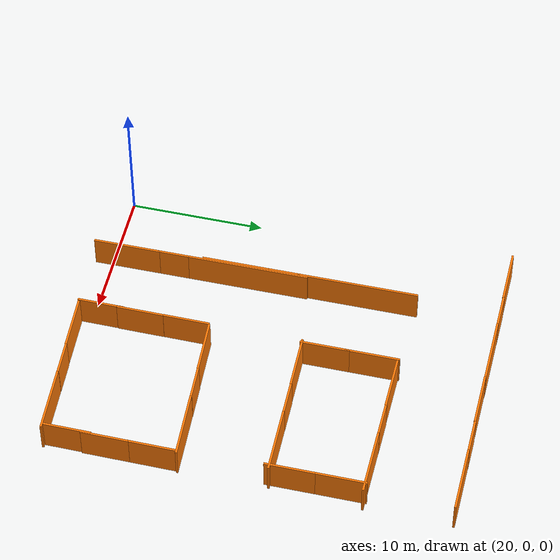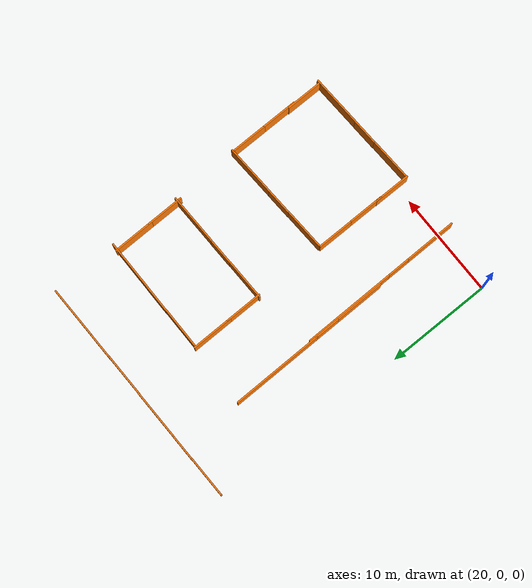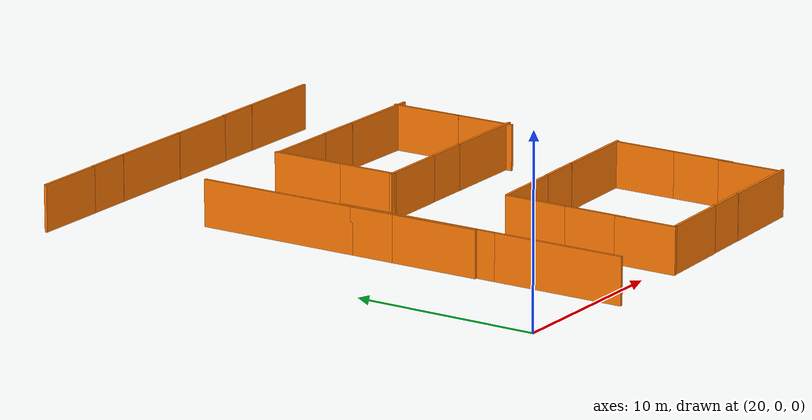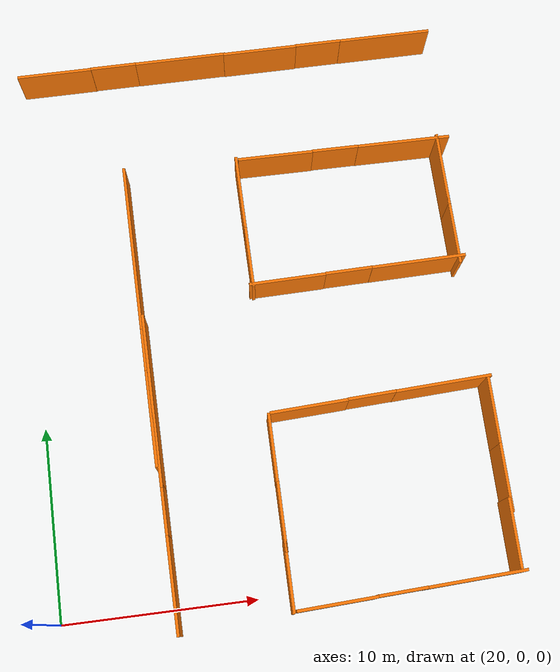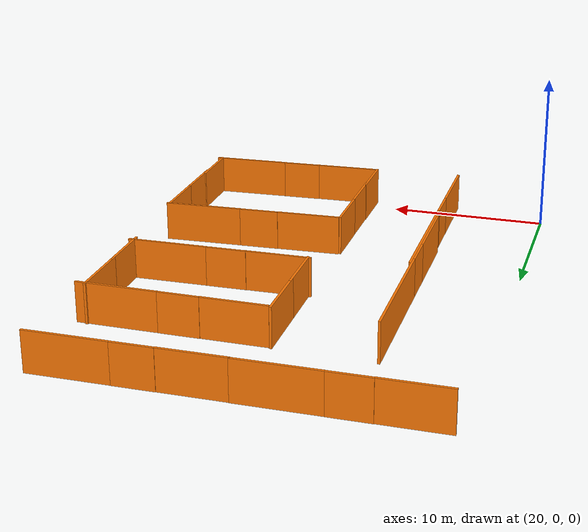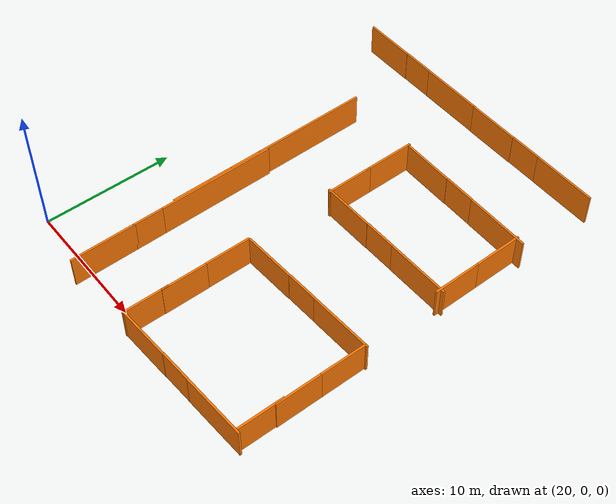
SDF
<sdf version="1.7">
 <world name="cimen_zemin_dunyasi">
  <model name="barier3_clone">
   <pose>28.1694 6.81332 0 0 0 -1.56341</pose>
   <link name="Wall_5">
    <collision name="Wall_5_Collision">
     <geometry><box><size>9 0.15 2.5</size></box></geometry>
     <pose>0 0 1.25 0 -0 0</pose>
    </collision>
    <visual name="Wall_5_Visual">
     <pose>0 0 1.25 0 -0 0</pose>
     <geometry><box><size>9 0.15 2.5</size></box></geometry>
     <material>
      <script><uri>file://media/materials/scripts/gazebo.material</uri><name>Gazebo/Grey</name></script>
      <ambient>0.996078 0.47451 0.0196078 1</ambient>
     </material>
     <meta><layer>0</layer></meta>
    </visual>
    <pose>-3.6 -2.29057 0 0 -0 0</pose>
   </link>
   <link name="Wall_7">
    <collision name="Wall_7_Collision">
     <geometry><box><size>2.5 0.15 2.5</size></box></geometry>
     <pose>0 0 1.25 0 -0 0</pose>
    </collision>
    <visual name="Wall_7_Visual">
     <pose>0 0 1.25 0 -0 0</pose>
     <geometry><box><size>2.5 0.15 2.5</size></box></geometry>
     <material>
      <script><uri>file://media/materials/scripts/gazebo.material</uri><name>Gazebo/Grey</name></script>
      <ambient>0.996078 0.47451 0.0196078 1</ambient>
     </material>
     <meta><layer>0</layer></meta>
    </visual>
    <pose>2 -2.29057 0 0 -0 0</pose>
   </link>
   <link name="Wall_9">
    <collision name="Wall_9_Collision">
     <geometry><box><size>5 0.15 2.5</size></box></geometry>
     <pose>0 0 1.25 0 -0 0</pose>
    </collision>
    <visual name="Wall_9_Visual">
     <pose>0 0 1.25 0 -0 0</pose>
     <geometry><box><size>5 0.15 2.5</size></box></geometry>
     <material>
      <script><uri>file://media/materials/scripts/gazebo.material</uri><name>Gazebo/Grey</name></script>
      <ambient>0.996078 0.47451 0.0196078 1</ambient>
     </material>
     <meta><layer>0</layer></meta>
    </visual>
    <pose>5.6 -2.29057 0 0 -0 0</pose>
   </link>
   <static>1</static>
  </model>
  <model name="barier3_clone_clone_0">
   <pose>27.9844 15.0485 0 0 0 -1.56341</pose>
   <link name="Wall_5">
    <collision name="Wall_5_Collision">
     <geometry><box><size>9 0.15 2.5</size></box></geometry>
     <pose>0 0 1.25 0 -0 0</pose>
    </collision>
    <visual name="Wall_5_Visual">
     <pose>0 0 1.25 0 -0 0</pose>
     <geometry><box><size>9 0.15 2.5</size></box></geometry>
     <material>
      <script><uri>file://media/materials/scripts/gazebo.material</uri><name>Gazebo/Grey</name></script>
      <ambient>0.996078 0.47451 0.0196078 1</ambient>
     </material>
     <meta><layer>0</layer></meta>
    </visual>
    <pose>-3.6 -2.29057 0 0 -0 0</pose>
   </link>
   <link name="Wall_7">
    <collision name="Wall_7_Collision">
     <geometry><box><size>2.5 0.15 2.5</size></box></geometry>
     <pose>0 0 1.25 0 -0 0</pose>
    </collision>
    <visual name="Wall_7_Visual">
     <pose>0 0 1.25 0 -0 0</pose>
     <geometry><box><size>2.5 0.15 2.5</size></box></geometry>
     <material>
      <script><uri>file://media/materials/scripts/gazebo.material</uri><name>Gazebo/Grey</name></script>
      <ambient>0.996078 0.47451 0.0196078 1</ambient>
     </material>
     <meta><layer>0</layer></meta>
    </visual>
    <pose>2 -2.29057 0 0 -0 0</pose>
   </link>
   <link name="Wall_9">
    <collision name="Wall_9_Collision">
     <geometry><box><size>5 0.15 2.5</size></box></geometry>
     <pose>0 0 1.25 0 -0 0</pose>
    </collision>
    <visual name="Wall_9_Visual">
     <pose>0 0 1.25 0 -0 0</pose>
     <geometry><box><size>5 0.15 2.5</size></box></geometry>
     <material>
      <script><uri>file://media/materials/scripts/gazebo.material</uri><name>Gazebo/Grey</name></script>
      <ambient>0.996078 0.47451 0.0196078 1</ambient>
     </material>
     <meta><layer>0</layer></meta>
    </visual>
    <pose>5.6 -2.29057 0 0 -0 0</pose>
   </link>
   <static>1</static>
  </model>
  <model name="barier3_clone_clone_clone_clone_0_clone_clone_clone_clone_1_clone">
   <link name="Wall_5">
    <pose>-1.25417 -2.31114 0 0 -0 0</pose>
    <inertial>
     <inertia><ixx>0</ixx><ixy>0</ixy><ixz>0</ixz><iyy>0</iyy><iyz>0</iyz><izz>0</izz></inertia>
     <mass>0</mass>
    </inertial>
    <visual name="Wall_5_Visual">
     <pose>0 0 1.25 0 -0 0</pose>
     <geometry><box><size>4.04839 0.15 2.5</size></box></geometry>
     <material>
      <script><uri>file://media/materials/scripts/gazebo.material</uri><name>Gazebo/Grey</name></script>
      <ambient>0.996078 0.47451 0.0196078 1</ambient>
      <shader type="pixel"/>
     </material>
     <meta><layer>0</layer></meta>
    </visual>
    <collision name="Wall_5_Collision">
     <pose>0 0 1.25 0 -0 0</pose>
     <geometry><box><size>4.04839 0.15 2.5</size></box></geometry>
     <surface>
      <friction>
       <ode><mu>1</mu><mu2>1</mu2><fdir1>0 0 0</fdir1><slip1>0</slip1><slip2>0</slip2></ode>
       <torsional>
        <coefficient>1</coefficient>
        <patch_radius>0</patch_radius>
        <surface_radius>0</surface_radius>
        <use_patch_radius>1</use_patch_radius>
        <ode><slip>0</slip></ode>
       </torsional>
      </friction>
      <bounce><restitution_coefficient>0</restitution_coefficient><threshold>1e+06</threshold></bounce>
      <contact>
       <collide_without_contact>0</collide_without_contact>
       <collide_without_contact_bitmask>1</collide_without_contact_bitmask>
       <collide_bitmask>1</collide_bitmask>
       <ode>
        <soft_cfm>0</soft_cfm>
        <soft_erp>0.2</soft_erp>
        <kp>1e+13</kp>
        <kd>1</kd>
        <max_vel>0.01</max_vel>
        <min_depth>0</min_depth>
       </ode>
       <bullet>
        <split_impulse>1</split_impulse>
        <split_impulse_penetration_threshold>-0.01</split_impulse_penetration_threshold>
        <soft_cfm>0</soft_cfm>
        <soft_erp>0.2</soft_erp>
        <kp>1e+13</kp>
        <kd>1</kd>
       </bullet>
      </contact>
     </surface>
    </collision>
   </link>
   <link name="Wall_7">
    <pose>2 -2.29057 0 0 -0 0</pose>
    <visual name="Wall_7_Visual">
     <pose>0 0 1.25 0 -0 0</pose>
     <geometry><box><size>2.5 0.15 2.5</size></box></geometry>
     <material>
      <script><uri>file://media/materials/scripts/gazebo.material</uri><name>Gazebo/Grey</name></script>
      <ambient>0.996078 0.47451 0.0196078 1</ambient>
      <shader type="pixel"/>
     </material>
     <meta><layer>0</layer></meta>
    </visual>
    <collision name="Wall_7_Collision">
     <pose>0 0 1.25 0 -0 0</pose>
     <geometry><box><size>2.5 0.15 2.5</size></box></geometry>
     <surface>
      <friction>
       <ode><mu>1</mu><mu2>1</mu2><fdir1>0 0 0</fdir1><slip1>0</slip1><slip2>0</slip2></ode>
       <torsional>
        <coefficient>1</coefficient>
        <patch_radius>0</patch_radius>
        <surface_radius>0</surface_radius>
        <use_patch_radius>1</use_patch_radius>
        <ode><slip>0</slip></ode>
       </torsional>
      </friction>
      <bounce><restitution_coefficient>0</restitution_coefficient><threshold>1e+06</threshold></bounce>
      <contact>
       <collide_without_contact>0</collide_without_contact>
       <collide_without_contact_bitmask>1</collide_without_contact_bitmask>
       <collide_bitmask>1</collide_bitmask>
       <ode>
        <soft_cfm>0</soft_cfm>
        <soft_erp>0.2</soft_erp>
        <kp>1e+13</kp>
        <kd>1</kd>
        <max_vel>0.01</max_vel>
        <min_depth>0</min_depth>
       </ode>
       <bullet>
        <split_impulse>1</split_impulse>
        <split_impulse_penetration_threshold>-0.01</split_impulse_penetration_threshold>
        <soft_cfm>0</soft_cfm>
        <soft_erp>0.2</soft_erp>
        <kp>1e+13</kp>
        <kd>1</kd>
       </bullet>
      </contact>
     </surface>
    </collision>
   </link>
   <link name="Wall_9">
    <pose>5.71906 -2.30051 0 0 -0 0</pose>
    <inertial>
     <inertia><ixx>0</ixx><ixy>0</ixy><ixz>0</ixz><iyy>0</iyy><iyz>0</iyz><izz>0</izz></inertia>
     <mass>0</mass>
    </inertial>
    <visual name="Wall_9_Visual">
     <pose>0 0 1.25 0 -0 0</pose>
     <geometry><box><size>4.97607 0.15 2.5</size></box></geometry>
     <material>
      <script><uri>file://media/materials/scripts/gazebo.material</uri><name>Gazebo/Grey</name></script>
      <ambient>0.996078 0.47451 0.0196078 1</ambient>
      <shader type="pixel"/>
     </material>
     <meta><layer>0</layer></meta>
    </visual>
    <collision name="Wall_9_Collision">
     <pose>0 0 1.25 0 -0 0</pose>
     <geometry><box><size>4.97607 0.15 2.5</size></box></geometry>
     <surface>
      <friction>
       <ode><mu>1</mu><mu2>1</mu2><fdir1>0 0 0</fdir1><slip1>0</slip1><slip2>0</slip2></ode>
       <torsional>
        <coefficient>1</coefficient>
        <patch_radius>0</patch_radius>
        <surface_radius>0</surface_radius>
        <use_patch_radius>1</use_patch_radius>
        <ode><slip>0</slip></ode>
       </torsional>
      </friction>
      <bounce><restitution_coefficient>0</restitution_coefficient><threshold>1e+06</threshold></bounce>
      <contact>
       <collide_without_contact>0</collide_without_contact>
       <collide_without_contact_bitmask>1</collide_without_contact_bitmask>
       <collide_bitmask>1</collide_bitmask>
       <ode>
        <soft_cfm>0</soft_cfm>
        <soft_erp>0.2</soft_erp>
        <kp>1e+13</kp>
        <kd>1</kd>
        <max_vel>0.01</max_vel>
        <min_depth>0</min_depth>
       </ode>
       <bullet>
        <split_impulse>1</split_impulse>
        <split_impulse_penetration_threshold>-0.01</split_impulse_penetration_threshold>
        <soft_cfm>0</soft_cfm>
        <soft_erp>0.2</soft_erp>
        <kp>1e+13</kp>
        <kd>1</kd>
       </bullet>
      </contact>
     </surface>
    </collision>
   </link>
   <static>1</static>
   <pose>34.9079 1.61904 0 0 -0 0.044817</pose>
  </model>
  <model name="barier3_clone_clone_clone_clone_0_clone_clone_clone_clone_1_clone_clone">
   <link name="Wall_5">
    <pose>-1.25417 -2.31114 0 0 -0 0</pose>
    <inertial>
     <inertia><ixx>0</ixx><ixy>0</ixy><ixz>0</ixz><iyy>0</iyy><iyz>0</iyz><izz>0</izz></inertia>
     <mass>0</mass>
    </inertial>
    <visual name="Wall_5_Visual">
     <pose>0 0 1.25 0 -0 0</pose>
     <geometry><box><size>4.04839 0.15 2.5</size></box></geometry>
     <material>
      <script><uri>file://media/materials/scripts/gazebo.material</uri><name>Gazebo/Grey</name></script>
      <ambient>0.996078 0.47451 0.0196078 1</ambient>
      <shader type="pixel"/>
     </material>
     <meta><layer>0</layer></meta>
    </visual>
    <collision name="Wall_5_Collision">
     <pose>0 0 1.25 0 -0 0</pose>
     <geometry><box><size>4.04839 0.15 2.5</size></box></geometry>
     <surface>
      <friction>
       <ode><mu>1</mu><mu2>1</mu2><fdir1>0 0 0</fdir1><slip1>0</slip1><slip2>0</slip2></ode>
       <torsional>
        <coefficient>1</coefficient>
        <patch_radius>0</patch_radius>
        <surface_radius>0</surface_radius>
        <use_patch_radius>1</use_patch_radius>
        <ode><slip>0</slip></ode>
       </torsional>
      </friction>
      <bounce><restitution_coefficient>0</restitution_coefficient><threshold>1e+06</threshold></bounce>
      <contact>
       <collide_without_contact>0</collide_without_contact>
       <collide_without_contact_bitmask>1</collide_without_contact_bitmask>
       <collide_bitmask>1</collide_bitmask>
       <ode>
        <soft_cfm>0</soft_cfm>
        <soft_erp>0.2</soft_erp>
        <kp>1e+13</kp>
        <kd>1</kd>
        <max_vel>0.01</max_vel>
        <min_depth>0</min_depth>
       </ode>
       <bullet>
        <split_impulse>1</split_impulse>
        <split_impulse_penetration_threshold>-0.01</split_impulse_penetration_threshold>
        <soft_cfm>0</soft_cfm>
        <soft_erp>0.2</soft_erp>
        <kp>1e+13</kp>
        <kd>1</kd>
       </bullet>
      </contact>
     </surface>
    </collision>
   </link>
   <link name="Wall_7">
    <pose>2 -2.29057 0 0 -0 0</pose>
    <visual name="Wall_7_Visual">
     <pose>0 0 1.25 0 -0 0</pose>
     <geometry><box><size>2.5 0.15 2.5</size></box></geometry>
     <material>
      <script><uri>file://media/materials/scripts/gazebo.material</uri><name>Gazebo/Grey</name></script>
      <ambient>0.996078 0.47451 0.0196078 1</ambient>
      <shader type="pixel"/>
     </material>
     <meta><layer>0</layer></meta>
    </visual>
    <collision name="Wall_7_Collision">
     <pose>0 0 1.25 0 -0 0</pose>
     <geometry><box><size>2.5 0.15 2.5</size></box></geometry>
     <surface>
      <friction>
       <ode><mu>1</mu><mu2>1</mu2><fdir1>0 0 0</fdir1><slip1>0</slip1><slip2>0</slip2></ode>
       <torsional>
        <coefficient>1</coefficient>
        <patch_radius>0</patch_radius>
        <surface_radius>0</surface_radius>
        <use_patch_radius>1</use_patch_radius>
        <ode><slip>0</slip></ode>
       </torsional>
      </friction>
      <bounce><restitution_coefficient>0</restitution_coefficient><threshold>1e+06</threshold></bounce>
      <contact>
       <collide_without_contact>0</collide_without_contact>
       <collide_without_contact_bitmask>1</collide_without_contact_bitmask>
       <collide_bitmask>1</collide_bitmask>
       <ode>
        <soft_cfm>0</soft_cfm>
        <soft_erp>0.2</soft_erp>
        <kp>1e+13</kp>
        <kd>1</kd>
        <max_vel>0.01</max_vel>
        <min_depth>0</min_depth>
       </ode>
       <bullet>
        <split_impulse>1</split_impulse>
        <split_impulse_penetration_threshold>-0.01</split_impulse_penetration_threshold>
        <soft_cfm>0</soft_cfm>
        <soft_erp>0.2</soft_erp>
        <kp>1e+13</kp>
        <kd>1</kd>
       </bullet>
      </contact>
     </surface>
    </collision>
   </link>
   <link name="Wall_9">
    <pose>5.71906 -2.30051 0 0 -0 0</pose>
    <inertial>
     <inertia><ixx>0</ixx><ixy>0</ixy><ixz>0</ixz><iyy>0</iyy><iyz>0</iyz><izz>0</izz></inertia>
     <mass>0</mass>
    </inertial>
    <visual name="Wall_9_Visual">
     <pose>0 0 1.25 0 -0 0</pose>
     <geometry><box><size>4.97607 0.15 2.5</size></box></geometry>
     <material>
      <script><uri>file://media/materials/scripts/gazebo.material</uri><name>Gazebo/Grey</name></script>
      <ambient>0.996078 0.47451 0.0196078 1</ambient>
      <shader type="pixel"/>
     </material>
     <meta><layer>0</layer></meta>
    </visual>
    <collision name="Wall_9_Collision">
     <pose>0 0 1.25 0 -0 0</pose>
     <geometry><box><size>4.97607 0.15 2.5</size></box></geometry>
     <surface>
      <friction>
       <ode><mu>1</mu><mu2>1</mu2><fdir1>0 0 0</fdir1><slip1>0</slip1><slip2>0</slip2></ode>
       <torsional>
        <coefficient>1</coefficient>
        <patch_radius>0</patch_radius>
        <surface_radius>0</surface_radius>
        <use_patch_radius>1</use_patch_radius>
        <ode><slip>0</slip></ode>
       </torsional>
      </friction>
      <bounce><restitution_coefficient>0</restitution_coefficient><threshold>1e+06</threshold></bounce>
      <contact>
       <collide_without_contact>0</collide_without_contact>
       <collide_without_contact_bitmask>1</collide_without_contact_bitmask>
       <collide_bitmask>1</collide_bitmask>
       <ode>
        <soft_cfm>0</soft_cfm>
        <soft_erp>0.2</soft_erp>
        <kp>1e+13</kp>
        <kd>1</kd>
        <max_vel>0.01</max_vel>
        <min_depth>0</min_depth>
       </ode>
       <bullet>
        <split_impulse>1</split_impulse>
        <split_impulse_penetration_threshold>-0.01</split_impulse_penetration_threshold>
        <soft_cfm>0</soft_cfm>
        <soft_erp>0.2</soft_erp>
        <kp>1e+13</kp>
        <kd>1</kd>
       </bullet>
      </contact>
     </surface>
    </collision>
   </link>
   <static>1</static>
   <pose>34.8709 11.3998 0 0 -0 0.044817</pose>
  </model>
  <model name="barrier2_0_clone_clone_0_clone_clone_clone_clone_clone_0">
   <pose>30.9165 8.75458 0 0 -0 1.56919</pose>
   <link name="Wall_3">
    <collision name="Wall_3_Collision">
     <geometry><box><size>3.5 0.15 2.5</size></box></geometry>
     <pose>0 0 1.25 0 -0 0</pose>
    </collision>
    <visual name="Wall_3_Visual">
     <pose>0 0 1.25 0 -0 0</pose>
     <geometry><box><size>3.5 0.15 2.5</size></box></geometry>
     <material>
      <script><uri>file://media/materials/scripts/gazebo.material</uri><name>Gazebo/Grey</name></script>
      <ambient>0.996078 0.47451 0.0196078 1</ambient>
     </material>
     <meta><layer>0</layer></meta>
    </visual>
    <pose>-1.55327 -0.720218 0 0 -0 0</pose>
   </link>
   <static>1</static>
  </model>
  <model name="barrier2_0_clone_clone_0_clone_clone_clone_clone_clone_0_clone">
   <pose>30.9213 5.28965 0 0 -0 1.56919</pose>
   <link name="Wall_3">
    <collision name="Wall_3_Collision">
     <geometry><box><size>3.5 0.15 2.5</size></box></geometry>
     <pose>0 0 1.25 0 -0 0</pose>
    </collision>
    <visual name="Wall_3_Visual">
     <pose>0 0 1.25 0 -0 0</pose>
     <geometry><box><size>3.5 0.15 2.5</size></box></geometry>
     <material>
      <script><uri>file://media/materials/scripts/gazebo.material</uri><name>Gazebo/Grey</name></script>
      <ambient>0.996078 0.47451 0.0196078 1</ambient>
     </material>
     <meta><layer>0</layer></meta>
    </visual>
    <pose>-1.55327 -0.720218 0 0 -0 0</pose>
   </link>
   <static>1</static>
  </model>
  <model name="barrier2_0_clone_clone_0_clone_clone_clone_clone_clone_0_clone_clone">
   <pose>30.8904 2.35625 0 0 -0 1.56919</pose>
   <link name="Wall_3">
    <collision name="Wall_3_Collision">
     <geometry><box><size>3.5 0.15 2.5</size></box></geometry>
     <pose>0 0 1.25 0 -0 0</pose>
    </collision>
    <visual name="Wall_3_Visual">
     <pose>0 0 1.25 0 -0 0</pose>
     <geometry><box><size>3.5 0.15 2.5</size></box></geometry>
     <material>
      <script><uri>file://media/materials/scripts/gazebo.material</uri><name>Gazebo/Grey</name></script>
      <ambient>0.996078 0.47451 0.0196078 1</ambient>
     </material>
     <meta><layer>0</layer></meta>
    </visual>
    <pose>-1.55327 -0.720218 0 0 -0 0</pose>
   </link>
   <static>1</static>
  </model>
  <model name="barrier2_0_clone_clone_0_clone_clone_clone_clone_clone_0_clone_0">
   <pose>42.2613 9.24396 0 0 -0 1.56919</pose>
   <link name="Wall_3">
    <collision name="Wall_3_Collision">
     <geometry><box><size>3.5 0.15 2.5</size></box></geometry>
     <pose>0 0 1.25 0 -0 0</pose>
    </collision>
    <visual name="Wall_3_Visual">
     <pose>0 0 1.25 0 -0 0</pose>
     <geometry><box><size>3.5 0.15 2.5</size></box></geometry>
     <material>
      <script><uri>file://media/materials/scripts/gazebo.material</uri><name>Gazebo/Grey</name></script>
      <ambient>0.996078 0.47451 0.0196078 1</ambient>
     </material>
     <meta><layer>0</layer></meta>
    </visual>
    <pose>-1.55327 -0.720218 0 0 -0 0</pose>
   </link>
   <static>1</static>
  </model>
  <model name="barrier2_0_clone_clone_0_clone_clone_clone_clone_clone_0_clone_0_clone">
   <pose>42.256 5.80018 0 0 -0 1.56919</pose>
   <link name="Wall_3">
    <collision name="Wall_3_Collision">
     <geometry><box><size>3.5 0.15 2.5</size></box></geometry>
     <pose>0 0 1.25 0 -0 0</pose>
    </collision>
    <visual name="Wall_3_Visual">
     <pose>0 0 1.25 0 -0 0</pose>
     <geometry><box><size>3.5 0.15 2.5</size></box></geometry>
     <material>
      <script><uri>file://media/materials/scripts/gazebo.material</uri><name>Gazebo/Grey</name></script>
      <ambient>0.996078 0.47451 0.0196078 1</ambient>
     </material>
     <meta><layer>0</layer></meta>
    </visual>
    <pose>-1.55327 -0.720218 0 0 -0 0</pose>
   </link>
   <static>1</static>
  </model>
  <model name="barrier2_0_clone_clone_0_clone_clone_clone_clone_clone_0_clone_0_clone_clone">
   <pose>42.1832 3.05875 0 0 -0 1.56919</pose>
   <link name="Wall_3">
    <collision name="Wall_3_Collision">
     <geometry><box><size>3.5 0.15 2.5</size></box></geometry>
     <pose>0 0 1.25 0 -0 0</pose>
    </collision>
    <visual name="Wall_3_Visual">
     <pose>0 0 1.25 0 -0 0</pose>
     <geometry><box><size>3.5 0.15 2.5</size></box></geometry>
     <material>
      <script><uri>file://media/materials/scripts/gazebo.material</uri><name>Gazebo/Grey</name></script>
      <ambient>0.996078 0.47451 0.0196078 1</ambient>
     </material>
     <meta><layer>0</layer></meta>
    </visual>
    <pose>-1.55327 -0.720218 0 0 -0 0</pose>
   </link>
   <static>1</static>
  </model>
  <model name="barier3_clone_clone_clone_clone_0_clone_clone_clone_clone_1_clone_clone_clone">
   <link name="Wall_5">
    <pose>-1.25417 -2.31114 0 0 -0 0</pose>
    <inertial>
     <inertia><ixx>0</ixx><ixy>0</ixy><ixz>0</ixz><iyy>0</iyy><iyz>0</iyz><izz>0</izz></inertia>
     <mass>0</mass>
    </inertial>
    <visual name="Wall_5_Visual">
     <pose>0 0 1.25 0 -0 0</pose>
     <geometry><box><size>4.04839 0.15 2.5</size></box></geometry>
     <material>
      <script><uri>file://media/materials/scripts/gazebo.material</uri><name>Gazebo/Grey</name></script>
      <ambient>0.996078 0.47451 0.0196078 1</ambient>
      <shader type="pixel"/>
     </material>
     <meta><layer>0</layer></meta>
    </visual>
    <collision name="Wall_5_Collision">
     <pose>0 0 1.25 0 -0 0</pose>
     <geometry><box><size>4.04839 0.15 2.5</size></box></geometry>
     <surface>
      <friction>
       <ode><mu>1</mu><mu2>1</mu2><fdir1>0 0 0</fdir1><slip1>0</slip1><slip2>0</slip2></ode>
       <torsional>
        <coefficient>1</coefficient>
        <patch_radius>0</patch_radius>
        <surface_radius>0</surface_radius>
        <use_patch_radius>1</use_patch_radius>
        <ode><slip>0</slip></ode>
       </torsional>
      </friction>
      <bounce><restitution_coefficient>0</restitution_coefficient><threshold>1e+06</threshold></bounce>
      <contact>
       <collide_without_contact>0</collide_without_contact>
       <collide_without_contact_bitmask>1</collide_without_contact_bitmask>
       <collide_bitmask>1</collide_bitmask>
       <ode>
        <soft_cfm>0</soft_cfm>
        <soft_erp>0.2</soft_erp>
        <kp>1e+13</kp>
        <kd>1</kd>
        <max_vel>0.01</max_vel>
        <min_depth>0</min_depth>
       </ode>
       <bullet>
        <split_impulse>1</split_impulse>
        <split_impulse_penetration_threshold>-0.01</split_impulse_penetration_threshold>
        <soft_cfm>0</soft_cfm>
        <soft_erp>0.2</soft_erp>
        <kp>1e+13</kp>
        <kd>1</kd>
       </bullet>
      </contact>
     </surface>
    </collision>
   </link>
   <link name="Wall_7">
    <pose>2 -2.29057 0 0 -0 0</pose>
    <visual name="Wall_7_Visual">
     <pose>0 0 1.25 0 -0 0</pose>
     <geometry><box><size>2.5 0.15 2.5</size></box></geometry>
     <material>
      <script><uri>file://media/materials/scripts/gazebo.material</uri><name>Gazebo/Grey</name></script>
      <ambient>0.996078 0.47451 0.0196078 1</ambient>
      <shader type="pixel"/>
     </material>
     <meta><layer>0</layer></meta>
    </visual>
    <collision name="Wall_7_Collision">
     <pose>0 0 1.25 0 -0 0</pose>
     <geometry><box><size>2.5 0.15 2.5</size></box></geometry>
     <surface>
      <friction>
       <ode><mu>1</mu><mu2>1</mu2><fdir1>0 0 0</fdir1><slip1>0</slip1><slip2>0</slip2></ode>
       <torsional>
        <coefficient>1</coefficient>
        <patch_radius>0</patch_radius>
        <surface_radius>0</surface_radius>
        <use_patch_radius>1</use_patch_radius>
        <ode><slip>0</slip></ode>
       </torsional>
      </friction>
      <bounce><restitution_coefficient>0</restitution_coefficient><threshold>1e+06</threshold></bounce>
      <contact>
       <collide_without_contact>0</collide_without_contact>
       <collide_without_contact_bitmask>1</collide_without_contact_bitmask>
       <collide_bitmask>1</collide_bitmask>
       <ode>
        <soft_cfm>0</soft_cfm>
        <soft_erp>0.2</soft_erp>
        <kp>1e+13</kp>
        <kd>1</kd>
        <max_vel>0.01</max_vel>
        <min_depth>0</min_depth>
       </ode>
       <bullet>
        <split_impulse>1</split_impulse>
        <split_impulse_penetration_threshold>-0.01</split_impulse_penetration_threshold>
        <soft_cfm>0</soft_cfm>
        <soft_erp>0.2</soft_erp>
        <kp>1e+13</kp>
        <kd>1</kd>
       </bullet>
      </contact>
     </surface>
    </collision>
   </link>
   <link name="Wall_9">
    <pose>5.71906 -2.30051 0 0 -0 0</pose>
    <inertial>
     <inertia><ixx>0</ixx><ixy>0</ixy><ixz>0</ixz><iyy>0</iyy><iyz>0</iyz><izz>0</izz></inertia>
     <mass>0</mass>
    </inertial>
    <visual name="Wall_9_Visual">
     <pose>0 0 1.25 0 -0 0</pose>
     <geometry><box><size>4.97607 0.15 2.5</size></box></geometry>
     <material>
      <script><uri>file://media/materials/scripts/gazebo.material</uri><name>Gazebo/Grey</name></script>
      <ambient>0.996078 0.47451 0.0196078 1</ambient>
      <shader type="pixel"/>
     </material>
     <meta><layer>0</layer></meta>
    </visual>
    <collision name="Wall_9_Collision">
     <pose>0 0 1.25 0 -0 0</pose>
     <geometry><box><size>4.97607 0.15 2.5</size></box></geometry>
     <surface>
      <friction>
       <ode><mu>1</mu><mu2>1</mu2><fdir1>0 0 0</fdir1><slip1>0</slip1><slip2>0</slip2></ode>
       <torsional>
        <coefficient>1</coefficient>
        <patch_radius>0</patch_radius>
        <surface_radius>0</surface_radius>
        <use_patch_radius>1</use_patch_radius>
        <ode><slip>0</slip></ode>
       </torsional>
      </friction>
      <bounce><restitution_coefficient>0</restitution_coefficient><threshold>1e+06</threshold></bounce>
      <contact>
       <collide_without_contact>0</collide_without_contact>
       <collide_without_contact_bitmask>1</collide_without_contact_bitmask>
       <collide_bitmask>1</collide_bitmask>
       <ode>
        <soft_cfm>0</soft_cfm>
        <soft_erp>0.2</soft_erp>
        <kp>1e+13</kp>
        <kd>1</kd>
        <max_vel>0.01</max_vel>
        <min_depth>0</min_depth>
       </ode>
       <bullet>
        <split_impulse>1</split_impulse>
        <split_impulse_penetration_threshold>-0.01</split_impulse_penetration_threshold>
        <soft_cfm>0</soft_cfm>
        <soft_erp>0.2</soft_erp>
        <kp>1e+13</kp>
        <kd>1</kd>
       </bullet>
      </contact>
     </surface>
    </collision>
   </link>
   <static>1</static>
   <pose>35.0921 25.1428 0 0 0 -0.007995</pose>
  </model>
  <model name="barier3_clone_clone_clone_clone_0_clone_clone_clone_clone_1_clone_clone_clone_clone">
   <link name="Wall_5">
    <pose>-1.25417 -2.31114 0 0 -0 0</pose>
    <inertial>
     <inertia><ixx>0</ixx><ixy>0</ixy><ixz>0</ixz><iyy>0</iyy><iyz>0</iyz><izz>0</izz></inertia>
     <mass>0</mass>
    </inertial>
    <visual name="Wall_5_Visual">
     <pose>0 0 1.25 0 -0 0</pose>
     <geometry><box><size>4.04839 0.15 2.5</size></box></geometry>
     <material>
      <script><uri>file://media/materials/scripts/gazebo.material</uri><name>Gazebo/Grey</name></script>
      <ambient>0.996078 0.47451 0.0196078 1</ambient>
      <shader type="pixel"/>
     </material>
     <meta><layer>0</layer></meta>
    </visual>
    <collision name="Wall_5_Collision">
     <pose>0 0 1.25 0 -0 0</pose>
     <geometry><box><size>4.04839 0.15 2.5</size></box></geometry>
     <surface>
      <friction>
       <ode><mu>1</mu><mu2>1</mu2><fdir1>0 0 0</fdir1><slip1>0</slip1><slip2>0</slip2></ode>
       <torsional>
        <coefficient>1</coefficient>
        <patch_radius>0</patch_radius>
        <surface_radius>0</surface_radius>
        <use_patch_radius>1</use_patch_radius>
        <ode><slip>0</slip></ode>
       </torsional>
      </friction>
      <bounce><restitution_coefficient>0</restitution_coefficient><threshold>1e+06</threshold></bounce>
      <contact>
       <collide_without_contact>0</collide_without_contact>
       <collide_without_contact_bitmask>1</collide_without_contact_bitmask>
       <collide_bitmask>1</collide_bitmask>
       <ode>
        <soft_cfm>0</soft_cfm>
        <soft_erp>0.2</soft_erp>
        <kp>1e+13</kp>
        <kd>1</kd>
        <max_vel>0.01</max_vel>
        <min_depth>0</min_depth>
       </ode>
       <bullet>
        <split_impulse>1</split_impulse>
        <split_impulse_penetration_threshold>-0.01</split_impulse_penetration_threshold>
        <soft_cfm>0</soft_cfm>
        <soft_erp>0.2</soft_erp>
        <kp>1e+13</kp>
        <kd>1</kd>
       </bullet>
      </contact>
     </surface>
    </collision>
   </link>
   <link name="Wall_7">
    <pose>2 -2.29057 0 0 -0 0</pose>
    <visual name="Wall_7_Visual">
     <pose>0 0 1.25 0 -0 0</pose>
     <geometry><box><size>2.5 0.15 2.5</size></box></geometry>
     <material>
      <script><uri>file://media/materials/scripts/gazebo.material</uri><name>Gazebo/Grey</name></script>
      <ambient>0.996078 0.47451 0.0196078 1</ambient>
      <shader type="pixel"/>
     </material>
     <meta><layer>0</layer></meta>
    </visual>
    <collision name="Wall_7_Collision">
     <pose>0 0 1.25 0 -0 0</pose>
     <geometry><box><size>2.5 0.15 2.5</size></box></geometry>
     <surface>
      <friction>
       <ode><mu>1</mu><mu2>1</mu2><fdir1>0 0 0</fdir1><slip1>0</slip1><slip2>0</slip2></ode>
       <torsional>
        <coefficient>1</coefficient>
        <patch_radius>0</patch_radius>
        <surface_radius>0</surface_radius>
        <use_patch_radius>1</use_patch_radius>
        <ode><slip>0</slip></ode>
       </torsional>
      </friction>
      <bounce><restitution_coefficient>0</restitution_coefficient><threshold>1e+06</threshold></bounce>
      <contact>
       <collide_without_contact>0</collide_without_contact>
       <collide_without_contact_bitmask>1</collide_without_contact_bitmask>
       <collide_bitmask>1</collide_bitmask>
       <ode>
        <soft_cfm>0</soft_cfm>
        <soft_erp>0.2</soft_erp>
        <kp>1e+13</kp>
        <kd>1</kd>
        <max_vel>0.01</max_vel>
        <min_depth>0</min_depth>
       </ode>
       <bullet>
        <split_impulse>1</split_impulse>
        <split_impulse_penetration_threshold>-0.01</split_impulse_penetration_threshold>
        <soft_cfm>0</soft_cfm>
        <soft_erp>0.2</soft_erp>
        <kp>1e+13</kp>
        <kd>1</kd>
       </bullet>
      </contact>
     </surface>
    </collision>
   </link>
   <link name="Wall_9">
    <pose>5.71906 -2.30051 0 0 -0 0</pose>
    <inertial>
     <inertia><ixx>0</ixx><ixy>0</ixy><ixz>0</ixz><iyy>0</iyy><iyz>0</iyz><izz>0</izz></inertia>
     <mass>0</mass>
    </inertial>
    <visual name="Wall_9_Visual">
     <pose>0 0 1.25 0 -0 0</pose>
     <geometry><box><size>4.97607 0.15 2.5</size></box></geometry>
     <material>
      <script><uri>file://media/materials/scripts/gazebo.material</uri><name>Gazebo/Grey</name></script>
      <ambient>0.996078 0.47451 0.0196078 1</ambient>
      <shader type="pixel"/>
     </material>
     <meta><layer>0</layer></meta>
    </visual>
    <collision name="Wall_9_Collision">
     <pose>0 0 1.25 0 -0 0</pose>
     <geometry><box><size>4.97607 0.15 2.5</size></box></geometry>
     <surface>
      <friction>
       <ode><mu>1</mu><mu2>1</mu2><fdir1>0 0 0</fdir1><slip1>0</slip1><slip2>0</slip2></ode>
       <torsional>
        <coefficient>1</coefficient>
        <patch_radius>0</patch_radius>
        <surface_radius>0</surface_radius>
        <use_patch_radius>1</use_patch_radius>
        <ode><slip>0</slip></ode>
       </torsional>
      </friction>
      <bounce><restitution_coefficient>0</restitution_coefficient><threshold>1e+06</threshold></bounce>
      <contact>
       <collide_without_contact>0</collide_without_contact>
       <collide_without_contact_bitmask>1</collide_without_contact_bitmask>
       <collide_bitmask>1</collide_bitmask>
       <ode>
        <soft_cfm>0</soft_cfm>
        <soft_erp>0.2</soft_erp>
        <kp>1e+13</kp>
        <kd>1</kd>
        <max_vel>0.01</max_vel>
        <min_depth>0</min_depth>
       </ode>
       <bullet>
        <split_impulse>1</split_impulse>
        <split_impulse_penetration_threshold>-0.01</split_impulse_penetration_threshold>
        <soft_cfm>0</soft_cfm>
        <soft_erp>0.2</soft_erp>
        <kp>1e+13</kp>
        <kd>1</kd>
       </bullet>
      </contact>
     </surface>
    </collision>
   </link>
   <static>1</static>
   <pose>34.7484 18.184 0 0 -0 0.015752</pose>
  </model>
  <model name="barier3_clone_clone_clone_clone_0_clone_clone_0_clone_clone_clone_clone_0">
   <link name="Wall_5">
    <pose>-1.14926 -2.31114 0 0 -0 0</pose>
    <inertial>
     <inertia><ixx>0</ixx><ixy>0</ixy><ixz>0</ixz><iyy>0</iyy><iyz>0</iyz><izz>0</izz></inertia>
     <mass>0</mass>
    </inertial>
    <visual name="Wall_5_Visual">
     <pose>0 0 1.25 0 -0 0</pose>
     <geometry><box><size>4.04839 0.15 2.5</size></box></geometry>
     <material>
      <script><uri>file://media/materials/scripts/gazebo.material</uri><name>Gazebo/Grey</name></script>
      <ambient>0.996078 0.47451 0.0196078 1</ambient>
      <shader type="pixel"/>
     </material>
     <meta><layer>0</layer></meta>
    </visual>
    <collision name="Wall_5_Collision">
     <pose>0 0 1.25 0 -0 0</pose>
     <geometry><box><size>4.04839 0.15 2.5</size></box></geometry>
     <surface>
      <friction>
       <ode><mu>1</mu><mu2>1</mu2><fdir1>0 0 0</fdir1><slip1>0</slip1><slip2>0</slip2></ode>
       <torsional>
        <coefficient>1</coefficient>
        <patch_radius>0</patch_radius>
        <surface_radius>0</surface_radius>
        <use_patch_radius>1</use_patch_radius>
        <ode><slip>0</slip></ode>
       </torsional>
      </friction>
      <bounce><restitution_coefficient>0</restitution_coefficient><threshold>1e+06</threshold></bounce>
      <contact>
       <collide_without_contact>0</collide_without_contact>
       <collide_without_contact_bitmask>1</collide_without_contact_bitmask>
       <collide_bitmask>1</collide_bitmask>
       <ode>
        <soft_cfm>0</soft_cfm>
        <soft_erp>0.2</soft_erp>
        <kp>1e+13</kp>
        <kd>1</kd>
        <max_vel>0.01</max_vel>
        <min_depth>0</min_depth>
       </ode>
       <bullet>
        <split_impulse>1</split_impulse>
        <split_impulse_penetration_threshold>-0.01</split_impulse_penetration_threshold>
        <soft_cfm>0</soft_cfm>
        <soft_erp>0.2</soft_erp>
        <kp>1e+13</kp>
        <kd>1</kd>
       </bullet>
      </contact>
     </surface>
    </collision>
   </link>
   <link name="Wall_9">
    <pose>2.34493 -2.31065 0 0 -0 0</pose>
    <inertial>
     <inertia><ixx>0</ixx><ixy>0</ixy><ixz>0</ixz><iyy>0</iyy><iyz>0</iyz><izz>0</izz></inertia>
     <mass>0</mass>
    </inertial>
    <visual name="Wall_9_Visual">
     <pose>0 0 1.25 0 -0 0</pose>
     <geometry><box><size>3.66586 0.15 2.5</size></box></geometry>
     <material>
      <script><uri>file://media/materials/scripts/gazebo.material</uri><name>Gazebo/Grey</name></script>
      <ambient>0.996078 0.47451 0.0196078 1</ambient>
      <shader type="pixel"/>
     </material>
     <meta><layer>0</layer></meta>
    </visual>
    <collision name="Wall_9_Collision">
     <pose>0 0 1.25 0 -0 0</pose>
     <geometry><box><size>3.66586 0.15 2.5</size></box></geometry>
     <surface>
      <friction>
       <ode><mu>1</mu><mu2>1</mu2><fdir1>0 0 0</fdir1><slip1>0</slip1><slip2>0</slip2></ode>
       <torsional>
        <coefficient>1</coefficient>
        <patch_radius>0</patch_radius>
        <surface_radius>0</surface_radius>
        <use_patch_radius>1</use_patch_radius>
        <ode><slip>0</slip></ode>
       </torsional>
      </friction>
      <bounce><restitution_coefficient>0</restitution_coefficient><threshold>1e+06</threshold></bounce>
      <contact>
       <collide_without_contact>0</collide_without_contact>
       <collide_without_contact_bitmask>1</collide_without_contact_bitmask>
       <collide_bitmask>1</collide_bitmask>
       <ode>
        <soft_cfm>0</soft_cfm>
        <soft_erp>0.2</soft_erp>
        <kp>1e+13</kp>
        <kd>1</kd>
        <max_vel>0.01</max_vel>
        <min_depth>0</min_depth>
       </ode>
       <bullet>
        <split_impulse>1</split_impulse>
        <split_impulse_penetration_threshold>-0.01</split_impulse_penetration_threshold>
        <soft_cfm>0</soft_cfm>
        <soft_erp>0.2</soft_erp>
        <kp>1e+13</kp>
        <kd>1</kd>
       </bullet>
      </contact>
     </surface>
    </collision>
   </link>
   <static>1</static>
   <pose>34.0157 19.8572 0 0 0 -1.56598</pose>
  </model>
  <model name="barier3_clone_clone_clone_clone_0_clone_clone_0_clone_clone_clone_clone_0_clone">
   <link name="Wall_5">
    <pose>-1.14926 -2.31114 0 0 -0 0</pose>
    <inertial>
     <inertia><ixx>0</ixx><ixy>0</ixy><ixz>0</ixz><iyy>0</iyy><iyz>0</iyz><izz>0</izz></inertia>
     <mass>0</mass>
    </inertial>
    <visual name="Wall_5_Visual">
     <pose>0 0 1.25 0 -0 0</pose>
     <geometry><box><size>4.04839 0.15 2.5</size></box></geometry>
     <material>
      <script><uri>file://media/materials/scripts/gazebo.material</uri><name>Gazebo/Grey</name></script>
      <ambient>0.996078 0.47451 0.0196078 1</ambient>
      <shader type="pixel"/>
     </material>
     <meta><layer>0</layer></meta>
    </visual>
    <collision name="Wall_5_Collision">
     <pose>0 0 1.25 0 -0 0</pose>
     <geometry><box><size>4.04839 0.15 2.5</size></box></geometry>
     <surface>
      <friction>
       <ode><mu>1</mu><mu2>1</mu2><fdir1>0 0 0</fdir1><slip1>0</slip1><slip2>0</slip2></ode>
       <torsional>
        <coefficient>1</coefficient>
        <patch_radius>0</patch_radius>
        <surface_radius>0</surface_radius>
        <use_patch_radius>1</use_patch_radius>
        <ode><slip>0</slip></ode>
       </torsional>
      </friction>
      <bounce><restitution_coefficient>0</restitution_coefficient><threshold>1e+06</threshold></bounce>
      <contact>
       <collide_without_contact>0</collide_without_contact>
       <collide_without_contact_bitmask>1</collide_without_contact_bitmask>
       <collide_bitmask>1</collide_bitmask>
       <ode>
        <soft_cfm>0</soft_cfm>
        <soft_erp>0.2</soft_erp>
        <kp>1e+13</kp>
        <kd>1</kd>
        <max_vel>0.01</max_vel>
        <min_depth>0</min_depth>
       </ode>
       <bullet>
        <split_impulse>1</split_impulse>
        <split_impulse_penetration_threshold>-0.01</split_impulse_penetration_threshold>
        <soft_cfm>0</soft_cfm>
        <soft_erp>0.2</soft_erp>
        <kp>1e+13</kp>
        <kd>1</kd>
       </bullet>
      </contact>
     </surface>
    </collision>
   </link>
   <link name="Wall_9">
    <pose>2.34493 -2.31065 0 0 -0 0</pose>
    <inertial>
     <inertia><ixx>0</ixx><ixy>0</ixy><ixz>0</ixz><iyy>0</iyy><iyz>0</iyz><izz>0</izz></inertia>
     <mass>0</mass>
    </inertial>
    <visual name="Wall_9_Visual">
     <pose>0 0 1.25 0 -0 0</pose>
     <geometry><box><size>3.66586 0.15 2.5</size></box></geometry>
     <material>
      <script><uri>file://media/materials/scripts/gazebo.material</uri><name>Gazebo/Grey</name></script>
      <ambient>0.996078 0.47451 0.0196078 1</ambient>
      <shader type="pixel"/>
     </material>
     <meta><layer>0</layer></meta>
    </visual>
    <collision name="Wall_9_Collision">
     <pose>0 0 1.25 0 -0 0</pose>
     <geometry><box><size>3.66586 0.15 2.5</size></box></geometry>
     <surface>
      <friction>
       <ode><mu>1</mu><mu2>1</mu2><fdir1>0 0 0</fdir1><slip1>0</slip1><slip2>0</slip2></ode>
       <torsional>
        <coefficient>1</coefficient>
        <patch_radius>0</patch_radius>
        <surface_radius>0</surface_radius>
        <use_patch_radius>1</use_patch_radius>
        <ode><slip>0</slip></ode>
       </torsional>
      </friction>
      <bounce><restitution_coefficient>0</restitution_coefficient><threshold>1e+06</threshold></bounce>
      <contact>
       <collide_without_contact>0</collide_without_contact>
       <collide_without_contact_bitmask>1</collide_without_contact_bitmask>
       <collide_bitmask>1</collide_bitmask>
       <ode>
        <soft_cfm>0</soft_cfm>
        <soft_erp>0.2</soft_erp>
        <kp>1e+13</kp>
        <kd>1</kd>
        <max_vel>0.01</max_vel>
        <min_depth>0</min_depth>
       </ode>
       <bullet>
        <split_impulse>1</split_impulse>
        <split_impulse_penetration_threshold>-0.01</split_impulse_penetration_threshold>
        <soft_cfm>0</soft_cfm>
        <soft_erp>0.2</soft_erp>
        <kp>1e+13</kp>
        <kd>1</kd>
       </bullet>
      </contact>
     </surface>
    </collision>
   </link>
   <static>1</static>
   <pose>44.9498 19.8013 0 0 0 -1.56598</pose>
  </model>
  <model name="barier3_clone_clone_clone_clone_0_clone_clone_clone_1_clone_clone">
   <link name="Wall_5">
    <pose>-1.25417 -2.31114 0 0 -0 0</pose>
    <inertial>
     <inertia><ixx>0</ixx><ixy>0</ixy><ixz>0</ixz><iyy>0</iyy><iyz>0</iyz><izz>0</izz></inertia>
     <mass>0</mass>
    </inertial>
    <visual name="Wall_5_Visual">
     <pose>0 0 1.25 0 -0 0</pose>
     <geometry><box><size>4.04839 0.15 2.5</size></box></geometry>
     <material>
      <script><uri>file://media/materials/scripts/gazebo.material</uri><name>Gazebo/Grey</name></script>
      <ambient>0.996078 0.47451 0.0196078 1</ambient>
      <shader type="pixel"/>
     </material>
     <meta><layer>0</layer></meta>
    </visual>
    <collision name="Wall_5_Collision">
     <pose>0 0 1.25 0 -0 0</pose>
     <geometry><box><size>4.04839 0.15 2.5</size></box></geometry>
     <surface>
      <friction>
       <ode><mu>1</mu><mu2>1</mu2><fdir1>0 0 0</fdir1><slip1>0</slip1><slip2>0</slip2></ode>
       <torsional>
        <coefficient>1</coefficient>
        <patch_radius>0</patch_radius>
        <surface_radius>0</surface_radius>
        <use_patch_radius>1</use_patch_radius>
        <ode><slip>0</slip></ode>
       </torsional>
      </friction>
      <bounce><restitution_coefficient>0</restitution_coefficient><threshold>1e+06</threshold></bounce>
      <contact>
       <collide_without_contact>0</collide_without_contact>
       <collide_without_contact_bitmask>1</collide_without_contact_bitmask>
       <collide_bitmask>1</collide_bitmask>
       <ode>
        <soft_cfm>0</soft_cfm>
        <soft_erp>0.2</soft_erp>
        <kp>1e+13</kp>
        <kd>1</kd>
        <max_vel>0.01</max_vel>
        <min_depth>0</min_depth>
       </ode>
       <bullet>
        <split_impulse>1</split_impulse>
        <split_impulse_penetration_threshold>-0.01</split_impulse_penetration_threshold>
        <soft_cfm>0</soft_cfm>
        <soft_erp>0.2</soft_erp>
        <kp>1e+13</kp>
        <kd>1</kd>
       </bullet>
      </contact>
     </surface>
    </collision>
   </link>
   <link name="Wall_7">
    <pose>2 -2.29057 0 0 -0 0</pose>
    <visual name="Wall_7_Visual">
     <pose>0 0 1.25 0 -0 0</pose>
     <geometry><box><size>2.5 0.15 2.5</size></box></geometry>
     <material>
      <script><uri>file://media/materials/scripts/gazebo.material</uri><name>Gazebo/Grey</name></script>
      <ambient>0.996078 0.47451 0.0196078 1</ambient>
      <shader type="pixel"/>
     </material>
     <meta><layer>0</layer></meta>
    </visual>
    <collision name="Wall_7_Collision">
     <pose>0 0 1.25 0 -0 0</pose>
     <geometry><box><size>2.5 0.15 2.5</size></box></geometry>
     <surface>
      <friction>
       <ode><mu>1</mu><mu2>1</mu2><fdir1>0 0 0</fdir1><slip1>0</slip1><slip2>0</slip2></ode>
       <torsional>
        <coefficient>1</coefficient>
        <patch_radius>0</patch_radius>
        <surface_radius>0</surface_radius>
        <use_patch_radius>1</use_patch_radius>
        <ode><slip>0</slip></ode>
       </torsional>
      </friction>
      <bounce><restitution_coefficient>0</restitution_coefficient><threshold>1e+06</threshold></bounce>
      <contact>
       <collide_without_contact>0</collide_without_contact>
       <collide_without_contact_bitmask>1</collide_without_contact_bitmask>
       <collide_bitmask>1</collide_bitmask>
       <ode>
        <soft_cfm>0</soft_cfm>
        <soft_erp>0.2</soft_erp>
        <kp>1e+13</kp>
        <kd>1</kd>
        <max_vel>0.01</max_vel>
        <min_depth>0</min_depth>
       </ode>
       <bullet>
        <split_impulse>1</split_impulse>
        <split_impulse_penetration_threshold>-0.01</split_impulse_penetration_threshold>
        <soft_cfm>0</soft_cfm>
        <soft_erp>0.2</soft_erp>
        <kp>1e+13</kp>
        <kd>1</kd>
       </bullet>
      </contact>
     </surface>
    </collision>
   </link>
   <link name="Wall_9">
    <pose>5.71906 -2.30051 0 0 -0 0</pose>
    <inertial>
     <inertia><ixx>0</ixx><ixy>0</ixy><ixz>0</ixz><iyy>0</iyy><iyz>0</iyz><izz>0</izz></inertia>
     <mass>0</mass>
    </inertial>
    <visual name="Wall_9_Visual">
     <pose>0 0 1.25 0 -0 0</pose>
     <geometry><box><size>4.97607 0.15 2.5</size></box></geometry>
     <material>
      <script><uri>file://media/materials/scripts/gazebo.material</uri><name>Gazebo/Grey</name></script>
      <ambient>0.996078 0.47451 0.0196078 1</ambient>
      <shader type="pixel"/>
     </material>
     <meta><layer>0</layer></meta>
    </visual>
    <collision name="Wall_9_Collision">
     <pose>0 0 1.25 0 -0 0</pose>
     <geometry><box><size>4.97607 0.15 2.5</size></box></geometry>
     <surface>
      <friction>
       <ode><mu>1</mu><mu2>1</mu2><fdir1>0 0 0</fdir1><slip1>0</slip1><slip2>0</slip2></ode>
       <torsional>
        <coefficient>1</coefficient>
        <patch_radius>0</patch_radius>
        <surface_radius>0</surface_radius>
        <use_patch_radius>1</use_patch_radius>
        <ode><slip>0</slip></ode>
       </torsional>
      </friction>
      <bounce><restitution_coefficient>0</restitution_coefficient><threshold>1e+06</threshold></bounce>
      <contact>
       <collide_without_contact>0</collide_without_contact>
       <collide_without_contact_bitmask>1</collide_without_contact_bitmask>
       <collide_bitmask>1</collide_bitmask>
       <ode>
        <soft_cfm>0</soft_cfm>
        <soft_erp>0.2</soft_erp>
        <kp>1e+13</kp>
        <kd>1</kd>
        <max_vel>0.01</max_vel>
        <min_depth>0</min_depth>
       </ode>
       <bullet>
        <split_impulse>1</split_impulse>
        <split_impulse_penetration_threshold>-0.01</split_impulse_penetration_threshold>
        <soft_cfm>0</soft_cfm>
        <soft_erp>0.2</soft_erp>
        <kp>1e+13</kp>
        <kd>1</kd>
       </bullet>
      </contact>
     </surface>
    </collision>
   </link>
   <static>1</static>
   <pose>35.0275 31.5144 0 0 -0 0</pose>
  </model>
  <model name="barier3_clone_clone_clone_clone_0_clone_clone_clone_1_clone_clone_clone">
   <link name="Wall_5">
    <pose>-1.25417 -2.31114 0 0 -0 0</pose>
    <inertial>
     <inertia><ixx>0</ixx><ixy>0</ixy><ixz>0</ixz><iyy>0</iyy><iyz>0</iyz><izz>0</izz></inertia>
     <mass>0</mass>
    </inertial>
    <visual name="Wall_5_Visual">
     <pose>0 0 1.25 0 -0 0</pose>
     <geometry><box><size>4.04839 0.15 2.5</size></box></geometry>
     <material>
      <script><uri>file://media/materials/scripts/gazebo.material</uri><name>Gazebo/Grey</name></script>
      <ambient>0.996078 0.47451 0.0196078 1</ambient>
      <shader type="pixel"/>
     </material>
     <meta><layer>0</layer></meta>
    </visual>
    <collision name="Wall_5_Collision">
     <pose>0 0 1.25 0 -0 0</pose>
     <geometry><box><size>4.04839 0.15 2.5</size></box></geometry>
     <surface>
      <friction>
       <ode><mu>1</mu><mu2>1</mu2><fdir1>0 0 0</fdir1><slip1>0</slip1><slip2>0</slip2></ode>
       <torsional>
        <coefficient>1</coefficient>
        <patch_radius>0</patch_radius>
        <surface_radius>0</surface_radius>
        <use_patch_radius>1</use_patch_radius>
        <ode><slip>0</slip></ode>
       </torsional>
      </friction>
      <bounce><restitution_coefficient>0</restitution_coefficient><threshold>1e+06</threshold></bounce>
      <contact>
       <collide_without_contact>0</collide_without_contact>
       <collide_without_contact_bitmask>1</collide_without_contact_bitmask>
       <collide_bitmask>1</collide_bitmask>
       <ode>
        <soft_cfm>0</soft_cfm>
        <soft_erp>0.2</soft_erp>
        <kp>1e+13</kp>
        <kd>1</kd>
        <max_vel>0.01</max_vel>
        <min_depth>0</min_depth>
       </ode>
       <bullet>
        <split_impulse>1</split_impulse>
        <split_impulse_penetration_threshold>-0.01</split_impulse_penetration_threshold>
        <soft_cfm>0</soft_cfm>
        <soft_erp>0.2</soft_erp>
        <kp>1e+13</kp>
        <kd>1</kd>
       </bullet>
      </contact>
     </surface>
    </collision>
   </link>
   <link name="Wall_7">
    <pose>2 -2.29057 0 0 -0 0</pose>
    <visual name="Wall_7_Visual">
     <pose>0 0 1.25 0 -0 0</pose>
     <geometry><box><size>2.5 0.15 2.5</size></box></geometry>
     <material>
      <script><uri>file://media/materials/scripts/gazebo.material</uri><name>Gazebo/Grey</name></script>
      <ambient>0.996078 0.47451 0.0196078 1</ambient>
      <shader type="pixel"/>
     </material>
     <meta><layer>0</layer></meta>
    </visual>
    <collision name="Wall_7_Collision">
     <pose>0 0 1.25 0 -0 0</pose>
     <geometry><box><size>2.5 0.15 2.5</size></box></geometry>
     <surface>
      <friction>
       <ode><mu>1</mu><mu2>1</mu2><fdir1>0 0 0</fdir1><slip1>0</slip1><slip2>0</slip2></ode>
       <torsional>
        <coefficient>1</coefficient>
        <patch_radius>0</patch_radius>
        <surface_radius>0</surface_radius>
        <use_patch_radius>1</use_patch_radius>
        <ode><slip>0</slip></ode>
       </torsional>
      </friction>
      <bounce><restitution_coefficient>0</restitution_coefficient><threshold>1e+06</threshold></bounce>
      <contact>
       <collide_without_contact>0</collide_without_contact>
       <collide_without_contact_bitmask>1</collide_without_contact_bitmask>
       <collide_bitmask>1</collide_bitmask>
       <ode>
        <soft_cfm>0</soft_cfm>
        <soft_erp>0.2</soft_erp>
        <kp>1e+13</kp>
        <kd>1</kd>
        <max_vel>0.01</max_vel>
        <min_depth>0</min_depth>
       </ode>
       <bullet>
        <split_impulse>1</split_impulse>
        <split_impulse_penetration_threshold>-0.01</split_impulse_penetration_threshold>
        <soft_cfm>0</soft_cfm>
        <soft_erp>0.2</soft_erp>
        <kp>1e+13</kp>
        <kd>1</kd>
       </bullet>
      </contact>
     </surface>
    </collision>
   </link>
   <link name="Wall_9">
    <pose>5.71906 -2.30051 0 0 -0 0</pose>
    <inertial>
     <inertia><ixx>0</ixx><ixy>0</ixy><ixz>0</ixz><iyy>0</iyy><iyz>0</iyz><izz>0</izz></inertia>
     <mass>0</mass>
    </inertial>
    <visual name="Wall_9_Visual">
     <pose>0 0 1.25 0 -0 0</pose>
     <geometry><box><size>4.97607 0.15 2.5</size></box></geometry>
     <material>
      <script><uri>file://media/materials/scripts/gazebo.material</uri><name>Gazebo/Grey</name></script>
      <ambient>0.996078 0.47451 0.0196078 1</ambient>
      <shader type="pixel"/>
     </material>
     <meta><layer>0</layer></meta>
    </visual>
    <collision name="Wall_9_Collision">
     <pose>0 0 1.25 0 -0 0</pose>
     <geometry><box><size>4.97607 0.15 2.5</size></box></geometry>
     <surface>
      <friction>
       <ode><mu>1</mu><mu2>1</mu2><fdir1>0 0 0</fdir1><slip1>0</slip1><slip2>0</slip2></ode>
       <torsional>
        <coefficient>1</coefficient>
        <patch_radius>0</patch_radius>
        <surface_radius>0</surface_radius>
        <use_patch_radius>1</use_patch_radius>
        <ode><slip>0</slip></ode>
       </torsional>
      </friction>
      <bounce><restitution_coefficient>0</restitution_coefficient><threshold>1e+06</threshold></bounce>
      <contact>
       <collide_without_contact>0</collide_without_contact>
       <collide_without_contact_bitmask>1</collide_without_contact_bitmask>
       <collide_bitmask>1</collide_bitmask>
       <ode>
        <soft_cfm>0</soft_cfm>
        <soft_erp>0.2</soft_erp>
        <kp>1e+13</kp>
        <kd>1</kd>
        <max_vel>0.01</max_vel>
        <min_depth>0</min_depth>
       </ode>
       <bullet>
        <split_impulse>1</split_impulse>
        <split_impulse_penetration_threshold>-0.01</split_impulse_penetration_threshold>
        <soft_cfm>0</soft_cfm>
        <soft_erp>0.2</soft_erp>
        <kp>1e+13</kp>
        <kd>1</kd>
       </bullet>
      </contact>
     </surface>
    </collision>
   </link>
   <static>1</static>
   <pose>23.6344 31.5279 0 0 -0 0</pose>
  </model>
 </world>
</sdf>
